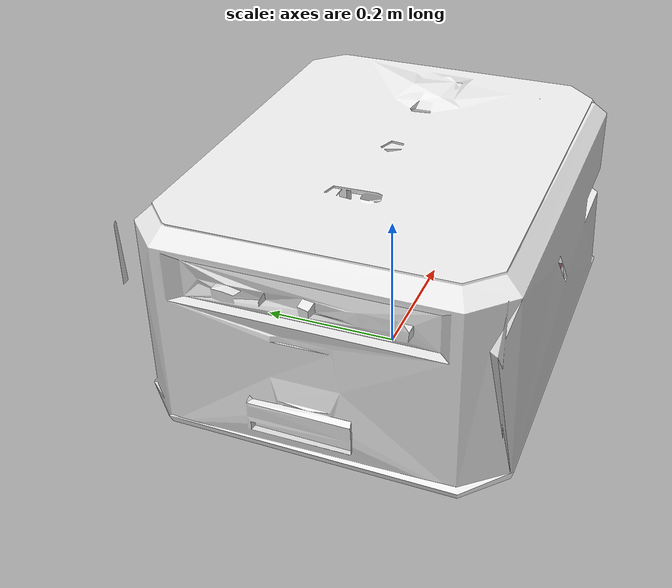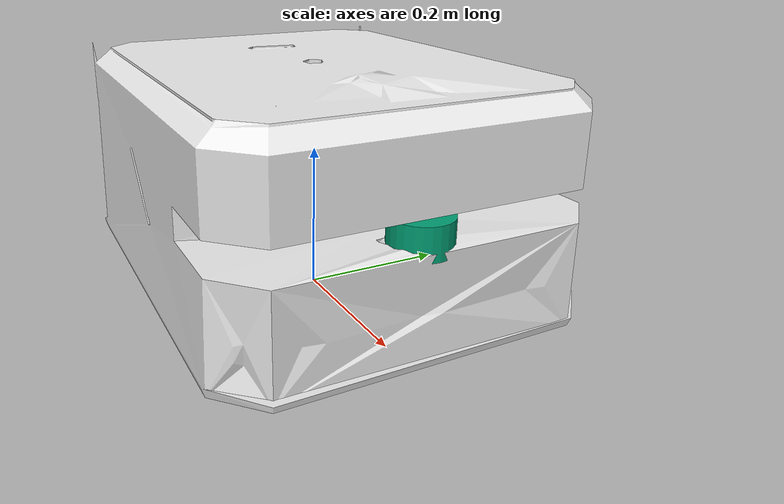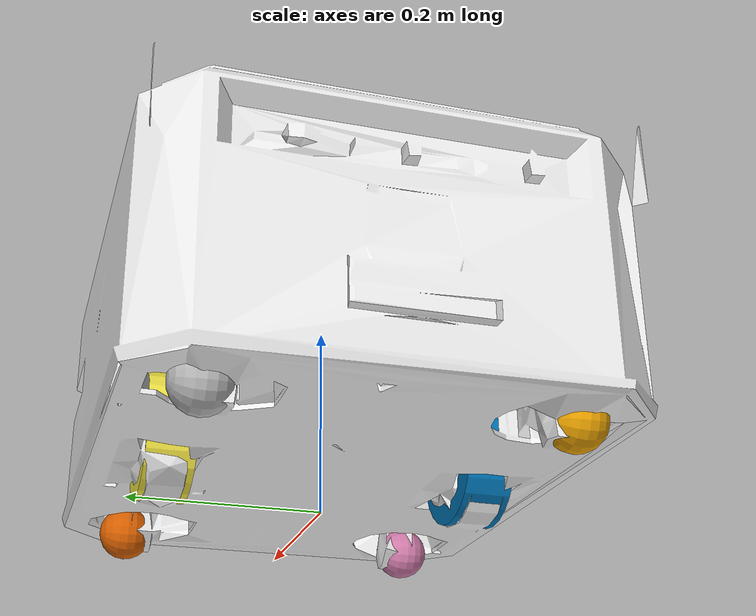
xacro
<?xml version="1.0"?>
<!-- Qualcomm's QRB robot base (qrb_ros_simulation, BSD-3-Clause) for the MoveIt Pro Simulator.
     The Gazebo diff-drive and sensor blocks are replaced by MujocoSystem and diff_drive_controller. -->
<robot xmlns:xacro="http://www.ros.org/wiki/xacro" name="qrb_robot_base">
  <xacro:arg name="mujoco_model" default="description/scene.xml" />
  <xacro:arg name="mujoco_viewer" default="false" />

  <xacro:include filename="$(find qrb_amr_sim)/description/urdf/qrb_robot_base.urdf" />
  <xacro:qrb_robot_base ns=""/>

  <ros2_control name="qrb_robot_base_mujoco" type="system">
    <hardware>
      <plugin>picknik_mujoco_ros/MujocoSystem</plugin>
      <param name="mujoco_model">$(arg mujoco_model)</param>
      <param name="mujoco_model_package">qrb_amr_sim</param>
      <param name="mujoco_viewer">$(arg mujoco_viewer)</param>
      <param name="mujoco_keyframe">default</param>
      <param name="odom_frame">odom</param>
      <param name="publish_mj_world_tf">true</param>
      <param name="base_link_name">base_link</param>
      <param name="publish_object_tf">false</param>
      <!-- The casters are URDF continuous joints about a diagonal axis but MuJoCo ball joints (they roll freely);
           nothing commands them. -->
      <param name="ignore_joint_validation">caster_wheel_joint1 caster_wheel_joint2 caster_wheel_joint3 caster_wheel_joint4</param>
      <param name="tf_publish_rate">60</param>
      <param name="render_publish_rate">10</param>
    </hardware>
    <joint name="wheel_left_joint">
      <command_interface name="velocity"/>
      <state_interface name="position"/>
      <state_interface name="velocity"/>
    </joint>
    <joint name="wheel_right_joint">
      <command_interface name="velocity"/>
      <state_interface name="position"/>
      <state_interface name="velocity"/>
    </joint>
  </ros2_control>
</robot>

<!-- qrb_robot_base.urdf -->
<!--
# Copyright (c) 2025 Qualcomm Innovation Center, Inc. All rights reserved.
# SPDX-License-Identifier: BSD-3-Clause-Clear
-->
<robot xmlns:xacro="http://ros.org/wiki/xacro">
  <xacro:macro name="qrb_robot_base" params="ns:=''">
    <xacro:property name="namespace" value="${ns + '/' if ns != '' else ''}" />
    <!-- Inertia matrices -->
    <xacro:include filename="$(find qrb_amr_sim)/description/urdf/inertia_macros.xacro" />
    <!-- Material matrices -->
    <xacro:include filename="$(find qrb_amr_sim)/description/urdf/material_macros.xacro" />

    <xacro:property name="box_length" value="0.62" />
    <xacro:property name="box_width" value="0.5" />
    <xacro:property name="box_height" value="0.285" scope="parent" />
    <xacro:property name="chassis_height" value="0.0364" />
    <xacro:property name="caster_wheel_radius" value="0.03"/>
    <xacro:property name="wheel_radius" value="0.0655" scope="parent" />
    <xacro:property name="wheel_space" value="0.3302" />
    <xacro:property name="wheel_thickness" value="0.05" />
    <xacro:property name="wheel_separation" value="0.33" scope="parent" />
    <xacro:property name="laser_radius" value="0.038" />
    <xacro:property name="laser_thickness" value="0.041" />
    <xacro:property name="laser_heigth" value="0.176" />

    <xacro:property name="base_link_mass" value="38"/>
    <xacro:property name="laser_link_mass" value="0.3"/>
    <xacro:property name="wheel_link_mass" value="1"/>
    <xacro:property name="caster_wheel_link_mass" value="0.3"/>

    <link name="${namespace}base_footprint"/>

    <link name="${namespace}base_link">
      <visual>
        <origin rpy="0 0 ${pi}" xyz="0 0 -${box_height/2}"/>
        <geometry>
          <mesh filename="package://qrb_amr_sim/description/assets/wheelTec_AMR.STL" scale="0.001 0.001 0.001"/>
        </geometry>
        <material name="white"/>
      </visual>
      <inertial name="base_link_inertial">
        <mass value="${base_link_mass}"/>
        <xacro:box_inertia_calculator mass="${base_link_mass}" length="${box_length}" width="${box_width}" height="${box_height}" />
      </inertial>
      <collision name="base_link_collision">
        <origin rpy="0 0 0" xyz="0 0 0"/>
        <geometry>
          <box size="${box_length} ${box_width} ${box_height}"/>
        </geometry>
      </collision>
    </link>

    <joint name="${namespace}base_link_joint" type="fixed">
      <parent link="${namespace}base_footprint"/>
      <child link="${namespace}base_link"/>
      <origin xyz="0 0 ${chassis_height+box_height/2}"/>
    </joint>

    <link name="${namespace}laser">
      <visual>
        <origin xyz="0 0 0" rpy="0 0 ${pi}"/>
        <geometry>
          <cylinder radius="${laser_radius}" length="${laser_thickness}" />
        </geometry>
        <material name="transparent"/>
      </visual>
      <inertial>
          <mass value="${laser_link_mass}"/>
          <xacro:cylinder_inertia_calculator mass="${laser_link_mass}" radius="${laser_radius}" length="${laser_thickness}"/>
      </inertial>
      <collision>
        <origin xyz="0 0 0" rpy="0 0 ${pi}"/>
        <geometry>
          <cylinder radius="${laser_radius}" length="${laser_thickness}" />
        </geometry>
      </collision>
    </link>
    <joint name="${namespace}laser_joint" type="fixed">
      <parent link="${namespace}base_link"/>
      <child link="${namespace}laser"/>
      <origin xyz="${box_length/2-laser_radius-0.01} 0 ${laser_heigth-chassis_height-(box_height/2)}" rpy="0 0 0" />
    </joint>

    <!-- Wheel_left Link -->
    <link name="${namespace}wheel_left">
      <inertial name="wheel_left_inertial">
        <mass value="${wheel_link_mass}"/>
        <xacro:cylinder_inertia_calculator mass="${wheel_link_mass}" radius="${wheel_radius}" length="${wheel_thickness}"/>
      </inertial>
      <collision name="wheel_left_collision">
        <origin xyz="0 0 0" rpy="${pi/2} 0 0"/>
        <geometry>
          <cylinder radius="${wheel_radius}" length="${wheel_thickness}"/>
        </geometry>
      </collision>
      <visual name="wheel_left_visual">
        <origin xyz="0 0 0" rpy="${pi/2} 0 0"/>
        <geometry>
          <cylinder radius="${wheel_radius}" length="${wheel_thickness}"/>
        </geometry>
        <material name="transparent"/>
      </visual>
    </link>

    <!-- Wheel_right Link -->
    <link name="${namespace}wheel_right">
      <inertial name="wheel_right_inertial">
        <mass value="${wheel_link_mass}"/>
        <xacro:cylinder_inertia_calculator mass="${wheel_link_mass}" radius="${wheel_radius}" length="${wheel_thickness}"/>
      </inertial>
      <collision name="wheel_right_collision">
        <origin xyz="0 0 0" rpy="${pi/2} 0 0"/>
        <geometry>
          <cylinder radius="${wheel_radius}" length="${wheel_thickness}"/>
        </geometry>
      </collision>
      <visual name="wheel_right_visual">
        <origin xyz="0 0 0" rpy="${pi/2} 0 0"/>
        <geometry>
          <cylinder radius="${wheel_radius}" length="${wheel_thickness}"/>
        </geometry>
        <material name="transparent"/>
      </visual>
    </link>

    <!-- Wheel_left Joint Link -->
    <joint name="${namespace}wheel_left_joint" type="continuous">
      <origin xyz="0 ${wheel_separation/2} -${chassis_height+box_height/2-wheel_radius}"/>
      <child link="${namespace}wheel_left"/>
      <parent link="${namespace}base_link"/>
      <axis xyz="0 1 0"/>
    </joint>

    <!-- Wheel_right Joint Link -->
    <joint name="${namespace}wheel_right_joint" type="continuous">
      <origin xyz="0 -${wheel_separation/2} -${chassis_height+box_height/2-wheel_radius}"/>
      <child link="${namespace}wheel_right"/>
      <parent link="${namespace}base_link"/>
      <axis xyz="0 1 0" />
    </joint>

    <link name="${namespace}caster_wheel_link1">
      <visual>
        <origin xyz="0 0 0" rpy="${pi/2} 0 0"/>
        <geometry>
          <sphere radius="${caster_wheel_radius}"/>
        </geometry>
        <material name="transparent"/>
      </visual>
      <collision>
        <origin xyz="0 0 0" rpy="${pi/2} 0 0"/>
        <geometry>
          <sphere radius="${caster_wheel_radius}"/>
        </geometry>
      </collision>
      <inertial>
        <mass value="${caster_wheel_link_mass}"/>
        <xacro:sphere_inertia_calculator mass="${caster_wheel_link_mass}" radius="${caster_wheel_radius}" />
      </inertial>
    </link>
    <joint name="${namespace}caster_wheel_joint1" type="continuous">
      <parent link="${namespace}base_link" />
      <child link="${namespace}caster_wheel_link1" />
      <origin xyz="0.24 0.17 -${chassis_height+box_height/2-caster_wheel_radius}" />
      <axis xyz="1 1 1" />
    </joint>

    <link name="${namespace}caster_wheel_link2">
      <visual>
        <origin xyz="0 0 0" rpy="${pi/2} 0 0"/>
        <geometry>
          <sphere radius="${caster_wheel_radius}"/>
        </geometry>
        <material name="transparent"/>
      </visual>
      <collision>
        <origin xyz="0 0 0" rpy="${pi/2} 0 0"/>
        <geometry>
          <sphere radius="${caster_wheel_radius}"/>
        </geometry>
      </collision>
      <inertial>
        <mass value="${caster_wheel_link_mass}"/>
        <xacro:sphere_inertia_calculator mass="${caster_wheel_link_mass}" radius="${caster_wheel_radius}" />
      </inertial>
    </link>
    <joint name="${namespace}caster_wheel_joint2" type="continuous">
      <parent link="${namespace}base_link" />
      <child link="${namespace}caster_wheel_link2" />
      <origin xyz="0.24 -0.17 -${chassis_height+box_height/2-caster_wheel_radius}" />
      <axis xyz="1 1 1" />
    </joint>

    <link name="${namespace}caster_wheel_link3">
      <visual>
        <origin xyz="0 0 0" rpy="${pi/2} 0 0"/>
        <geometry>
          <sphere radius="${caster_wheel_radius}"/>
        </geometry>
        <material name="transparent"/>
      </visual>
      <collision>
        <origin xyz="0 0 0" rpy="${pi/2} 0 0"/>
        <geometry>
          <sphere radius="${caster_wheel_radius}"/>
        </geometry>
      </collision>
      <inertial>
        <mass value="${caster_wheel_link_mass}"/>
        <xacro:sphere_inertia_calculator mass="${caster_wheel_link_mass}" radius="${caster_wheel_radius}" />
      </inertial>
    </link>
    <joint name="${namespace}caster_wheel_joint3" type="continuous">
      <parent link="${namespace}base_link" />
      <child link="${namespace}caster_wheel_link3" />
      <origin xyz="-0.24 0.17 -${chassis_height+box_height/2-caster_wheel_radius}" />
      <axis xyz="1 1 1" />
    </joint>

    <link name="${namespace}caster_wheel_link4">
      <visual>
        <origin xyz="0 0 0" rpy="${pi/2} 0 0"/>
        <geometry>
          <sphere radius="${caster_wheel_radius}"/>
        </geometry>
        <material name="transparent"/>
      </visual>
      <collision>
        <origin xyz="0 0 0" rpy="${pi/2} 0 0"/>
        <geometry>
          <sphere radius="${caster_wheel_radius}"/>
        </geometry>
      </collision>
      <inertial>
        <mass value="${caster_wheel_link_mass}"/>
        <xacro:sphere_inertia_calculator mass="${caster_wheel_link_mass}" radius="${caster_wheel_radius}" />
      </inertial>
    </link>
    <joint name="${namespace}caster_wheel_joint4" type="continuous">
      <parent link="${namespace}base_link" />
      <child link="${namespace}caster_wheel_link4" />
      <origin xyz="-0.24 -0.17 -${chassis_height+box_height/2-caster_wheel_radius}" />
      <axis xyz="1 1 1" />
    </joint>

    <link name="${namespace}base_imu_link">
      <inertial>
        <mass value="0.01"/>
        <inertia ixx="1.0" ixy="0" ixz="0" iyy="1.0" iyz="0" izz="1.0"/>
      </inertial>
    </link>
    <joint name="${namespace}base_to_imu_joint" type="fixed">
      <origin xyz="0.0 0.0 0.0"/>
      <parent link="${namespace}base_link"/>
      <child link="${namespace}base_imu_link"/>
    </joint>

    <!-- Gazebo elements -->
    <gazebo reference="${namespace}caster_wheel_link1">
      <mu1>0</mu1>
      <mu2>0</mu2>
    </gazebo>
    <gazebo reference="${namespace}caster_wheel_link2">
      <mu1>0</mu1>
      <mu2>0</mu2>
    </gazebo>
    <gazebo reference="${namespace}caster_wheel_link3">
      <mu1>0</mu1>
      <mu2>0</mu2>
    </gazebo>
    <gazebo reference="${namespace}caster_wheel_link4">
      <mu1>0</mu1>
      <mu2>0</mu2>
    </gazebo>
  </xacro:macro>
</robot>
